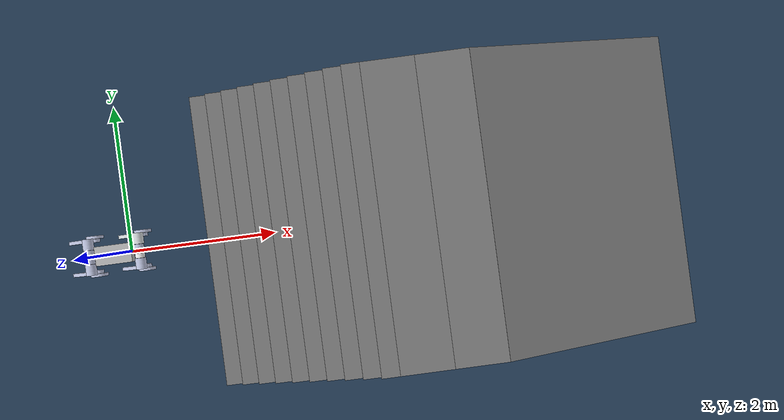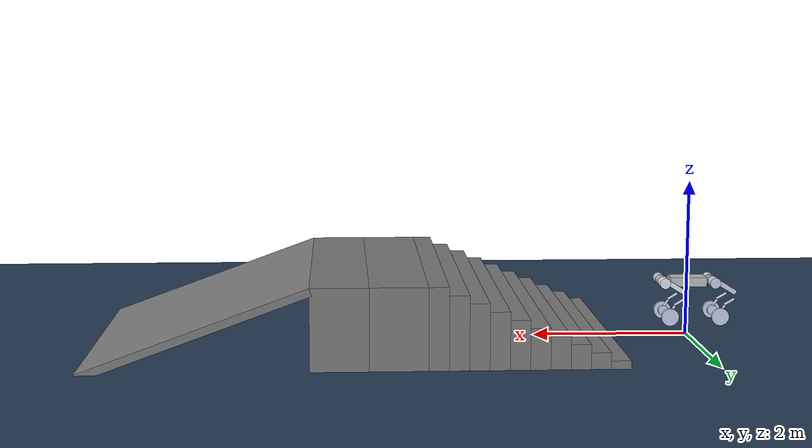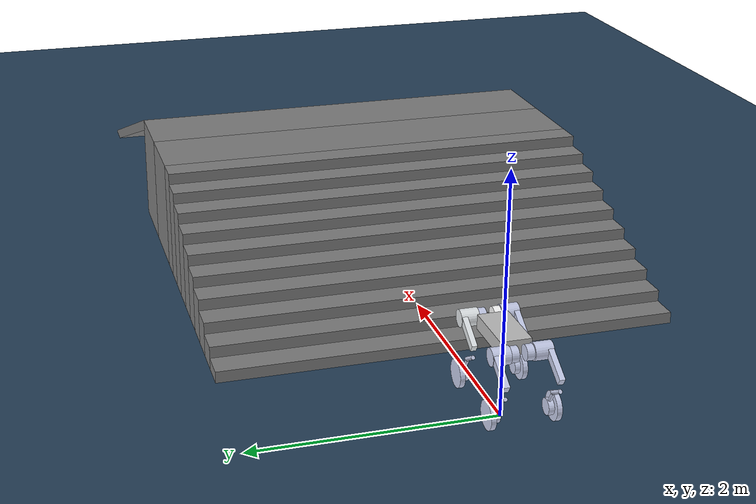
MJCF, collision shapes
<mujoco model="bigdog scene">
  <include file="bigdog.xml"/>

  <statistic center="0 0 0.1" extent="0.8"/>

  <visual>
    <headlight diffuse="0.6 0.6 0.6" ambient="0.3 0.3 0.3" specular="0 0 0"/>
    <rgba haze="0.15 0.25 0.35 1"/>
  </visual>

  <asset>
    <texture type="skybox" builtin="gradient" rgb1="0.3 0.5 0.7" rgb2="0 0 0" width="512" height="3072"/>
    <texture type="2d" name="groundplane" builtin="checker" mark="edge" rgb1="0.2 0.3 0.4" rgb2="0.1 0.2 0.3"
      markrgb="0.8 0.8 0.8" width="300" height="300"/>
    <material name="groundplane" texture="groundplane" texuniform="true" texrepeat="5 5" reflectance="0.2"/>
  </asset>

  <worldbody>
    <light pos="0 0 1.5" dir="0 0 -1" directional="true"/>
    <geom name="floor" size="0 0 0.05" type="plane" material="groundplane"/>

    <!-- Ascending stairs: 10 steps, riser=10cm, 12cm deep, touching -->
    <geom pos="1.20 0 0.05" type="box" size="0.12 2 0.05" quat="1.0 0 0 0"/>
    <geom pos="1.44 0 0.10" type="box" size="0.12 2 0.10" quat="1.0 0 0 0"/>
    <geom pos="1.68 0 0.15" type="box" size="0.12 2 0.15" quat="1.0 0 0 0"/>
    <geom pos="1.92 0 0.20" type="box" size="0.12 2 0.20" quat="1.0 0 0 0"/>
    <geom pos="2.16 0 0.25" type="box" size="0.12 2 0.25" quat="1.0 0 0 0"/>
    <geom pos="2.40 0 0.30" type="box" size="0.12 2 0.30" quat="1.0 0 0 0"/>
    <geom pos="2.64 0 0.35" type="box" size="0.12 2 0.35" quat="1.0 0 0 0"/>
    <geom pos="2.88 0 0.40" type="box" size="0.12 2 0.40" quat="1.0 0 0 0"/>
    <geom pos="3.12 0 0.45" type="box" size="0.12 2 0.45" quat="1.0 0 0 0"/>
    <geom pos="3.36 0 0.50" type="box" size="0.12 2 0.50" quat="1.0 0 0 0"/>

    <!-- Flat plateau at 1m height (touching) -->
    <geom pos="3.83 0 0.50" type="box" size="0.35 2 0.50" quat="1.0 0 0 0"/>
    <geom pos="4.53 0 0.50" type="box" size="0.35 2 0.50" quat="1.0 0 0 0"/>

    <!-- Ramp: 20° slope down to ground, length=2.92m, horizontal=2.75m, flush with plateau and ground -->
    <geom pos="6.237 0 0.453" type="box" size="1.462 2 0.05" quat="0.9848 0 0.1737 0"/>
  </worldbody>
</mujoco>

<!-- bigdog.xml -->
<mujoco model="dogurdf">
  <compiler angle="radian" meshdir="../meshes/"/>

  <asset>
    <mesh name="base_link" file="base_link.STL"/>
    <mesh name="FL_hip_link" file="FL_hip_link.STL"/>
    <mesh name="FL_thigh_link" file="FL_thigh_link.STL"/>
    <mesh name="FL_calf_link" file="FL_calf_link.STL"/>
    <mesh name="FL_wheel_link" file="FL_wheel_link.STL"/>
    <mesh name="FR_thigh_link" file="FR_thigh_link.STL"/>
    <mesh name="FR_calf_link" file="FR_calf_link.STL"/>
    <mesh name="FR_wheel_link" file="FR_wheel_link.STL"/>
  </asset>

  <worldbody>
    <body name="base" pos="0 0 0.70">
      <freejoint />
      <geom type="mesh" contype="0" conaffinity="0" group="1" density="0" rgba="0.75294 0.75294 0.75294 1" mesh="base_link"/>
      <geom size="0.237 0.125 0.06" type="box" rgba="0.75294 0.75294 0.75294 0"/>
      <body name="FL_hip_link" pos="0.3265 0.08 0">
        <inertial pos="-0.0096559 -0.00827404 0.00195208" quat="0.442032 0.549064 0.445917 0.551629" mass="0.297184" diaginertia="0.0007981 0.000673316 0.000408584"/>
        <joint name="FL_hip_joint" pos="0 0 0" axis="1 0 0" range="-0.6 0.6" actuatorfrcrange="-300 300"/>
        <geom type="mesh" contype="0" conaffinity="0" group="1" density="0" rgba="0.792157 0.819608 0.933333 1" mesh="FL_hip_link"/>
        <geom size="0.0615 0.03" pos="0 -0.02 0" quat="0.707105 0.707108 0 0" type="cylinder" rgba="0.792157 0.819608 0.933333 0"/>
        <body name="FL_thigh_link" pos="0 0.1308 0" quat="0.872818 0 0.488046 0">
          <inertial pos="-0.00631688 -0.0499256 -0.035101" quat="0.997918 -0.000570014 0.0642028 -0.00618484" mass="1.70741" diaginertia="0.0230849 0.0175775 0.00888118"/>
          <joint name="FL_thigh_joint" pos="0 0 0" axis="0 1 0" range="-0.7 1.75" actuatorfrcrange="-300 300"/>
          <geom type="mesh" contype="0" conaffinity="0" group="1" density="0" rgba="0.898039 0.917647 0.929412 1" mesh="FL_thigh_link"/>
          <geom size="0.07 0.0725" pos="0 -0.046 0" quat="0.707105 0.707108 0 0" type="cylinder" rgba="0.898039 0.917647 0.929412 0"/>
          <geom size="0.032 0.0225 0.15" pos="-0.03 0 -0.145" type="box" rgba="0.898039 0.917647 0.929412 0"/>
          <body name="FL_calf_link" pos="0 0 -0.34" quat="0.51675 -1.24664e-06 -0.856137 1.24664e-06">
            <inertial pos="-0.061645 0.0071922 -0.21635" quat="0.727889 0.125575 0.105269 0.665828" mass="0.47973" diaginertia="0.00987517 0.00953622 0.000517505"/>
            <joint name="FL_calf_joint" pos="0 0 0" axis="0 1 0" range="-1 0.35" actuatorfrcrange="-300 300"/>
            <geom type="mesh" contype="0" conaffinity="0" group="1" density="0" rgba="0.79216 0.81961 0.93333 1" mesh="FL_calf_link"/>
            <geom size="0.016 0.075" pos="-0.01 0 -0.12" type="cylinder" rgba="0.79216 0.81961 0.93333 0"/>
            <geom size="0.015 0.065" pos="-0.045 0 -0.24" quat="0.974794 0 0.223106 0" type="cylinder" rgba="0.79216 0.81961 0.93333 0"/>
            <geom size="0.065 0.0225" pos="-0.105 0 -0.32" quat="0.707107 0.707107 0 0" type="cylinder" rgba="0.79216 0.81961 0.93333 0"/>
            <body name="FL_wheel_link" pos="-0.10583 0.045 -0.32311" quat="0.994159 0 -0.107924 0">
              <inertial pos="-1.56973e-06 0.00208085 9.8644e-08" quat="0.544557 0.451063 0.451063 0.544557" mass="0.581037" diaginertia="0.00482401 0.00246789 0.00246783"/>
              <joint name="FL_wheel_joint" pos="0 0 0" axis="0 1 0" range="-1e+11 1e+11" actuatorfrcrange="-300 300"/>
              <geom type="mesh" contype="0" conaffinity="0" group="1" density="0" rgba="0.792157 0.819608 0.933333 1" mesh="FL_wheel_link"/>
              <geom size="0.113 0.02" quat="0.707107 0.707107 0 0" type="cylinder" rgba="0.792157 0.819608 0.933333 0"/>
            </body>
          </body>
        </body>
      </body>
      <body name="FR_hip_link" pos="0.3265 -0.08 0">
        <inertial pos="-0.0096559 0.00827404 -0.00195208" quat="0.442032 0.549064 0.445917 0.551629" mass="0.297184" diaginertia="0.0007981 0.000673316 0.000408584"/>
        <joint name="FR_hip_joint" pos="0 0 0" axis="1 0 0" range="-0.6 0.6" actuatorfrcrange="-300 300"/>
        <geom quat="4.48966e-11 1 0 0" type="mesh" contype="0" conaffinity="0" group="1" density="0" rgba="1 1 1 1" mesh="FL_hip_link"/>
        <geom size="0.0615 0.03" pos="0 0.02 0" quat="0.707105 0.707108 0 0" type="cylinder" rgba="1 1 1 0"/>
        <body name="FR_thigh_link" pos="0 -0.1308 0" quat="0.872818 0 0.488046 0">
          <inertial pos="-0.00575184 0.0497359 -0.0354219" quat="0.997948 0.000647994 0.0640072 -0.00184196" mass="1.69997" diaginertia="0.0230167 0.017542 0.00878115"/>
          <joint name="FR_thigh_joint" pos="0 0 0" axis="0 1 0" range="-0.7 1.75" actuatorfrcrange="-300 300"/>
          <geom type="mesh" contype="0" conaffinity="0" group="1" density="0" rgba="0.792157 0.819608 0.933333 1" mesh="FR_thigh_link"/>
          <geom size="0.07 0.0725" pos="0 0.046 0" quat="0.707105 0.707108 0 0" type="cylinder" rgba="0.792157 0.819608 0.933333 0"/>
          <geom size="0.032 0.0225 0.15" pos="-0.03 0 -0.145" type="box" rgba="0.792157 0.819608 0.933333 0"/>
          <body name="FR_calf_link" pos="0 0 -0.34" quat="0.51675 1.24664e-06 -0.856137 -1.24664e-06">
            <inertial pos="-0.0616455 -0.00719221 -0.216353" quat="0.665817 0.105272 0.125575 0.727899" mass="0.479729" diaginertia="0.00987519 0.0095363 0.000517505"/>
            <joint name="FR_calf_joint" pos="0 0 0" axis="0 1 0" range="-1 0.35" actuatorfrcrange="-300 300"/>
            <geom type="mesh" contype="0" conaffinity="0" group="1" density="0" rgba="0.792157 0.819608 0.933333 1" mesh="FR_calf_link"/>
            <geom size="0.016 0.075" pos="-0.01 0 -0.12" type="cylinder" rgba="0.792157 0.819608 0.933333 0"/>
            <geom size="0.015 0.065" pos="-0.045 0 -0.24" quat="0.974794 0 0.223106 0" type="cylinder" rgba="0.792157 0.819608 0.933333 0"/>
            <geom size="0.065 0.0225" pos="-0.105 0 -0.32" quat="0.707107 0.707107 0 0" type="cylinder" rgba="0.792157 0.819608 0.933333 0"/>
            <body name="FR_wheel_link" pos="-0.10583 -0.045 -0.32311" quat="0.590154 -7.97585e-07 0.80729 -7.97585e-07">
              <inertial pos="3.51522e-07 -0.00208095 7.86999e-07" quat="0.689728 0.155807 0.155807 0.689728" mass="0.581021" diaginertia="0.00482391 0.00246785 0.00246778"/>
              <joint name="FR_wheel_joint" pos="0 0 0" axis="0 1 0" range="-1e+11 1e+11" actuatorfrcrange="-300 300"/>
              <geom type="mesh" contype="0" conaffinity="0" group="1" density="0" rgba="0.792157 0.819608 0.933333 1" mesh="FR_wheel_link"/>
              <geom size="0.113 0.02" quat="0.707107 0.707107 0 0" type="cylinder" rgba="0.792157 0.819608 0.933333 0"/>
            </body>
          </body>
        </body>
      </body>
      <body name="RL_hip_link" pos="-0.3265 0.08 0">
        <inertial pos="0.0096559 -0.008274 -0.0019521" quat="0.551629 0.445917 0.549064 0.442032" mass="0.29718" diaginertia="0.0007981 0.000673316 0.000408584"/>
        <joint name="RL_hip_joint" pos="0 0 0" axis="1 0 0" range="-0.6 0.6" actuatorfrcrange="-300 300"/>
        <geom quat="4.48966e-11 0 1 0" type="mesh" contype="0" conaffinity="0" group="1" density="0" rgba="0.79216 0.81961 0.93333 1" mesh="FL_hip_link"/>
        <geom size="0.0615 0.03" pos="0 -0.02 0" quat="0.707105 0.707108 0 0" type="cylinder" rgba="0.79216 0.81961 0.93333 0"/>
        <body name="RL_thigh_link" pos="0 0.1308 0" quat="0.872818 0 0.488046 0">
          <inertial pos="-0.00544375 -0.0499256 -0.0352819" quat="0.997919 -0.000141419 0.0642039 0.00591364" mass="1.70741" diaginertia="0.0230848 0.0175775 0.00888117"/>
          <joint name="RL_thigh_joint" pos="0 0 0" axis="0 1 0" range="-0.7 1.75" actuatorfrcrange="-300 300"/>
          <geom type="mesh" contype="0" conaffinity="0" group="1" density="0" rgba="0.792157 0.819608 0.933333 1" mesh="FL_thigh_link"/>
          <geom size="0.07 0.0725" pos="0 -0.046 0" quat="0.707105 0.707108 0 0" type="cylinder" rgba="0.792157 0.819608 0.933333 0"/>
          <geom size="0.032 0.0225 0.15" pos="-0.03 0 -0.145" type="box" rgba="0.792157 0.819608 0.933333 0"/>
          <body name="RL_calf_link" pos="0 0 -0.34" quat="0.51675 -1.24664e-06 -0.856137 1.24664e-06">
            <inertial pos="-0.061645 0.0071922 -0.21635" quat="0.727889 0.125575 0.105269 0.665828" mass="0.47973" diaginertia="0.00987517 0.00953622 0.000517505"/>
            <joint name="RL_calf_joint" pos="0 0 0" axis="0 1 0" range="-1 0.35" actuatorfrcrange="-300 300"/>
            <geom type="mesh" contype="0" conaffinity="0" group="1" density="0" rgba="0.79216 0.81961 0.93333 1" mesh="FL_calf_link"/>
            <geom size="0.016 0.075" pos="-0.01 0 -0.12" type="cylinder" rgba="0.79216 0.81961 0.93333 0"/>
            <geom size="0.015 0.065" pos="-0.045 0 -0.24" quat="0.974794 0 0.223106 0" type="cylinder" rgba="0.79216 0.81961 0.93333 0"/>
            <geom size="0.065 0.0225" pos="-0.105 0 -0.32" quat="0.707107 0.707107 0 0" type="cylinder" rgba="0.79216 0.81961 0.93333 0"/>
            <body name="RL_wheel_link" pos="-0.10583 0.045 -0.32311" quat="0.690768 1.18679e-07 0.723077 1.18679e-07">
              <inertial pos="9.84842e-08 0.00208085 1.56944e-06" quat="0.705386 -0.0493046 -0.0493046 0.705386" mass="0.581037" diaginertia="0.00482401 0.00246789 0.00246783"/>
              <joint name="RL_wheel_joint" pos="0 0 0" axis="0 1 0" range="-1e+11 1e+11" actuatorfrcrange="-300 300"/>
              <geom type="mesh" contype="0" conaffinity="0" group="1" density="0" rgba="0.792157 0.819608 0.933333 1" mesh="FL_wheel_link"/>
              <geom size="0.113 0.02" quat="0.707107 0.707107 0 0" type="cylinder" rgba="0.792157 0.819608 0.933333 0"/>
            </body>
          </body>
        </body>
      </body>
      <body name="RR_hip_link" pos="-0.3265 -0.08 0">
        <inertial pos="0.0096559 0.00827404 0.00195208" quat="0.549064 0.442032 0.551629 0.445917" mass="0.297184" diaginertia="0.0007981 0.000673316 0.000408584"/>
        <joint name="RR_hip_joint" pos="0 0 0" axis="1 0 0" range="-0.6 0.6" actuatorfrcrange="-300 300"/>
        <geom quat="0 4.48966e-11 4.48966e-11 -1" type="mesh" contype="0" conaffinity="0" group="1" density="0" rgba="0.792157 0.819608 0.933333 1" mesh="FL_hip_link"/>
        <geom size="0.0615 0.03" pos="0 0.02 0" quat="0.707105 0.707108 0 0" type="cylinder" rgba="0.792157 0.819608 0.933333 0"/>
        <body name="RR_thigh_link" pos="0 -0.1308 0" quat="0.872818 0 0.488046 0">
          <inertial pos="-0.00615816 0.0499256 -0.0348428" quat="0.997972 -0.00211711 0.063465 0.00450001" mass="1.70741" diaginertia="0.0231084 0.017578 0.00885714"/>
          <joint name="RR_thigh_joint" pos="0 0 0" axis="0 1 0" range="-0.7 1.75" actuatorfrcrange="-300 300"/>
          <geom type="mesh" contype="0" conaffinity="0" group="1" density="0" rgba="0.792157 0.819608 0.933333 1" mesh="FR_thigh_link"/>
          <geom size="0.07 0.0725" pos="0 0.046 0" quat="0.707105 0.707108 0 0" type="cylinder" rgba="0.792157 0.819608 0.933333 0"/>
          <geom size="0.032 0.0225 0.15" pos="-0.03 0 -0.145" type="box" rgba="0.792157 0.819608 0.933333 0"/>
          <body name="RR_calf_link" pos="0 0 -0.34" quat="0.51675 1.24664e-06 -0.856137 -1.24664e-06">
            <inertial pos="-0.0616455 -0.00719221 -0.216353" quat="0.665817 0.105272 0.125575 0.727899" mass="0.479729" diaginertia="0.00987519 0.0095363 0.000517505"/>
            <joint name="RR_calf_joint" pos="0 0 0" axis="0 1 0" range="-1 0.35" actuatorfrcrange="-300 300"/>
            <geom type="mesh" contype="0" conaffinity="0" group="1" density="0" rgba="0.792157 0.819608 0.933333 1" mesh="FR_calf_link"/>
            <geom size="0.016 0.075" pos="-0.01 0 -0.12" type="cylinder" rgba="0.792157 0.819608 0.933333 0"/>
            <geom size="0.015 0.065" pos="-0.045 0 -0.24" quat="0.974794 0 0.223106 0" type="cylinder" rgba="0.792157 0.819608 0.933333 0"/>
            <geom size="0.065 0.0225" pos="-0.105 0 -0.32" quat="0.707107 0.707107 0 0" type="cylinder" rgba="0.792157 0.819608 0.933333 0"/>
            <body name="RR_wheel_link" pos="-0.10583 -0.045 -0.32311" quat="0.787225 0 0.616666 0">
              <inertial pos="-5.05763e-07 -0.00208095 6.9794e-07" quat="0.675226 -0.209928 -0.209928 0.675226" mass="0.581021" diaginertia="0.00482391 0.00246785 0.00246778"/>
              <joint name="RR_wheel_joint" pos="0 0 0" axis="0 1 0" range="-1e+11 1e+11" actuatorfrcrange="-300 300"/>
              <geom type="mesh" contype="0" conaffinity="0" group="1" density="0" rgba="0.792157 0.819608 0.933333 1" mesh="FR_wheel_link"/>
              <geom size="0.113 0.02" quat="0.707107 0.707107 0 0" type="cylinder" rgba="0.792157 0.819608 0.933333 0"/>
            </body>
          </body>
        </body>
      </body>
      <!-- imu参考点 -->
      <site name="base_imu" pos="0 0 0" type="sphere" size="0.005" rgba="1 0 0 0"/>
    </body>
  </worldbody>

  <actuator>
    <!-- Front Left (FL) -->
    <motor name="FL_hip"   joint="FL_hip_joint"   ctrlrange="-300 300"/>
    <motor name="FL_thigh" joint="FL_thigh_joint" ctrlrange="-300 300"/>
    <motor name="FL_calf"  joint="FL_calf_joint"  ctrlrange="-300 300"/>
    <motor name="FL_wheel" joint="FL_wheel_joint" ctrlrange="-300 300"/>

    <!-- Front Right (FR) -->
    <motor name="FR_hip"   joint="FR_hip_joint"   ctrlrange="-300 300"/>
    <motor name="FR_thigh" joint="FR_thigh_joint" ctrlrange="-300 300"/>
    <motor name="FR_calf"  joint="FR_calf_joint"  ctrlrange="-300 300"/>
    <motor name="FR_wheel" joint="FR_wheel_joint" ctrlrange="-300 300"/>

    <!-- Rear Left (RL) -->
    <motor name="RL_hip"   joint="RL_hip_joint"   ctrlrange="-300 300"/>
    <motor name="RL_thigh" joint="RL_thigh_joint" ctrlrange="-300 300"/>
    <motor name="RL_calf"  joint="RL_calf_joint"  ctrlrange="-300 300"/>
    <motor name="RL_wheel" joint="RL_wheel_joint" ctrlrange="-300 300"/>

    <!-- Rear Right (RR) -->
    <motor name="RR_hip"   joint="RR_hip_joint"   ctrlrange="-300 300"/>
    <motor name="RR_thigh" joint="RR_thigh_joint" ctrlrange="-300 300"/>
    <motor name="RR_calf"  joint="RR_calf_joint"  ctrlrange="-300 300"/>
    <motor name="RR_wheel" joint="RR_wheel_joint" ctrlrange="-300 300"/>
  </actuator>

  <sensor>
    <!-- Front Left (FL) joint positions -->
    <jointpos name="FL_hip_joint_pos"   joint="FL_hip_joint" />
    <jointpos name="FL_thigh_joint_pos" joint="FL_thigh_joint" />
    <jointpos name="FL_calf_joint_pos"  joint="FL_calf_joint" />
    <jointpos name="FL_wheel_joint_pos" joint="FL_wheel_joint" />

    <!-- Front Right (FR) joint positions -->
    <jointpos name="FR_hip_joint_pos"   joint="FR_hip_joint" />
    <jointpos name="FR_thigh_joint_pos" joint="FR_thigh_joint" />
    <jointpos name="FR_calf_joint_pos"  joint="FR_calf_joint" />
    <jointpos name="FR_wheel_joint_pos" joint="FR_wheel_joint" />

    <!-- Rear Left (RL) joint positions -->
    <jointpos name="RL_hip_joint_pos"   joint="RL_hip_joint" />
    <jointpos name="RL_thigh_joint_pos" joint="RL_thigh_joint" />
    <jointpos name="RL_calf_joint_pos"  joint="RL_calf_joint" />
    <jointpos name="RL_wheel_joint_pos" joint="RL_wheel_joint" />

    <!-- Rear Right (RR) joint positions -->
    <jointpos name="RR_hip_joint_pos"   joint="RR_hip_joint" />
    <jointpos name="RR_thigh_joint_pos" joint="RR_thigh_joint" />
    <jointpos name="RR_calf_joint_pos"  joint="RR_calf_joint" />
    <jointpos name="RR_wheel_joint_pos" joint="RR_wheel_joint" />

    <!-- Front Left (FL) joint velocities -->
    <jointvel name="FL_hip_joint_vel"   joint="FL_hip_joint" />
    <jointvel name="FL_thigh_joint_vel" joint="FL_thigh_joint" />
    <jointvel name="FL_calf_joint_vel"  joint="FL_calf_joint" />
    <jointvel name="FL_wheel_joint_vel" joint="FL_wheel_joint" noise="0.0" />

    <!-- Front Right (FR) joint velocities -->
    <jointvel name="FR_hip_joint_vel"   joint="FR_hip_joint" />
    <jointvel name="FR_thigh_joint_vel" joint="FR_thigh_joint" />
    <jointvel name="FR_calf_joint_vel"  joint="FR_calf_joint" />
    <jointvel name="FR_wheel_joint_vel" joint="FR_wheel_joint" noise="0.0" />

    <!-- Rear Left (RL) joint velocities -->
    <jointvel name="RL_hip_joint_vel"   joint="RL_hip_joint" />
    <jointvel name="RL_thigh_joint_vel" joint="RL_thigh_joint" />
    <jointvel name="RL_calf_joint_vel"  joint="RL_calf_joint" />
    <jointvel name="RL_wheel_joint_vel" joint="RL_wheel_joint" noise="0.0" />

    <!-- Rear Right (RR) joint velocities -->
    <jointvel name="RR_hip_joint_vel"   joint="RR_hip_joint" />
    <jointvel name="RR_thigh_joint_vel" joint="RR_thigh_joint" />
    <jointvel name="RR_calf_joint_vel"  joint="RR_calf_joint" />
    <jointvel name="RR_wheel_joint_vel" joint="RR_wheel_joint" noise="0.0" />

    <!-- Joint actuator forces (torques) -->
    <jointactuatorfrc name="FL_hip_torque"   joint="FL_hip_joint"   noise="0.01" />
    <jointactuatorfrc name="FL_thigh_torque" joint="FL_thigh_joint" noise="0.01" />
    <jointactuatorfrc name="FL_calf_torque"  joint="FL_calf_joint"  noise="0.01" />
    <jointactuatorfrc name="FL_wheel_torque" joint="FL_wheel_joint" />

    <jointactuatorfrc name="FR_hip_torque"   joint="FR_hip_joint"   noise="0.01" />
    <jointactuatorfrc name="FR_thigh_torque" joint="FR_thigh_joint" noise="0.01" />
    <jointactuatorfrc name="FR_calf_torque"  joint="FR_calf_joint"  noise="0.01" />
    <jointactuatorfrc name="FR_wheel_torque" joint="FR_wheel_joint" />

    <jointactuatorfrc name="RL_hip_torque"   joint="RL_hip_joint"   noise="0.01" />
    <jointactuatorfrc name="RL_thigh_torque" joint="RL_thigh_joint" noise="0.01" />
    <jointactuatorfrc name="RL_calf_torque"  joint="RL_calf_joint"  noise="0.01" />
    <jointactuatorfrc name="RL_wheel_torque" joint="RL_wheel_joint" />

    <jointactuatorfrc name="RR_hip_torque"   joint="RR_hip_joint"   noise="0.01" />
    <jointactuatorfrc name="RR_thigh_torque" joint="RR_thigh_joint" noise="0.01" />
    <jointactuatorfrc name="RR_calf_torque"  joint="RR_calf_joint"  noise="0.01" />
    <jointactuatorfrc name="RR_wheel_torque" joint="RR_wheel_joint" />

    <!-- IMU sensors -->
    <framequat name="imu_quat" objtype="site" objname="base_imu" noise="0.0" />
    <gyro name="imu_gyro" site="base_imu" noise="0.0" />
    <accelerometer name="imu_acc" site="base_imu" />
    <framepos name="frame_pos" objtype="site" objname="base_imu" />
    <framelinvel name="frame_vel" objtype="site" objname="base_imu" />
  </sensor>

</mujoco>
